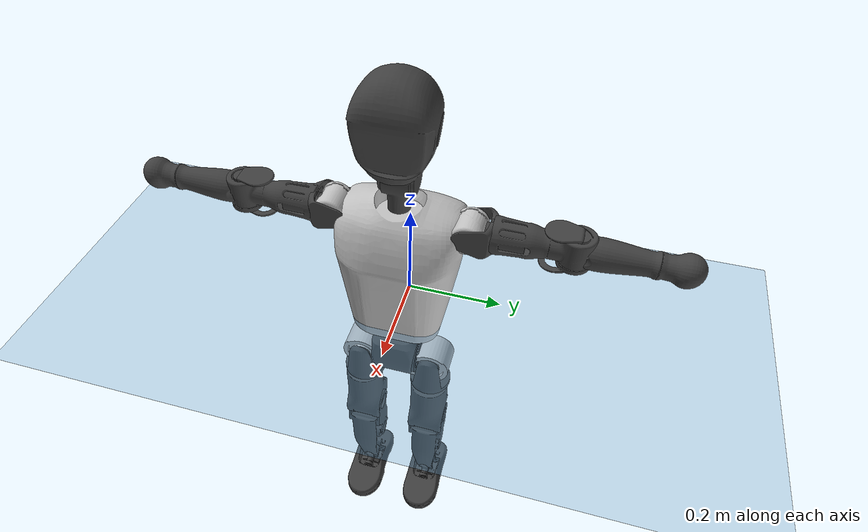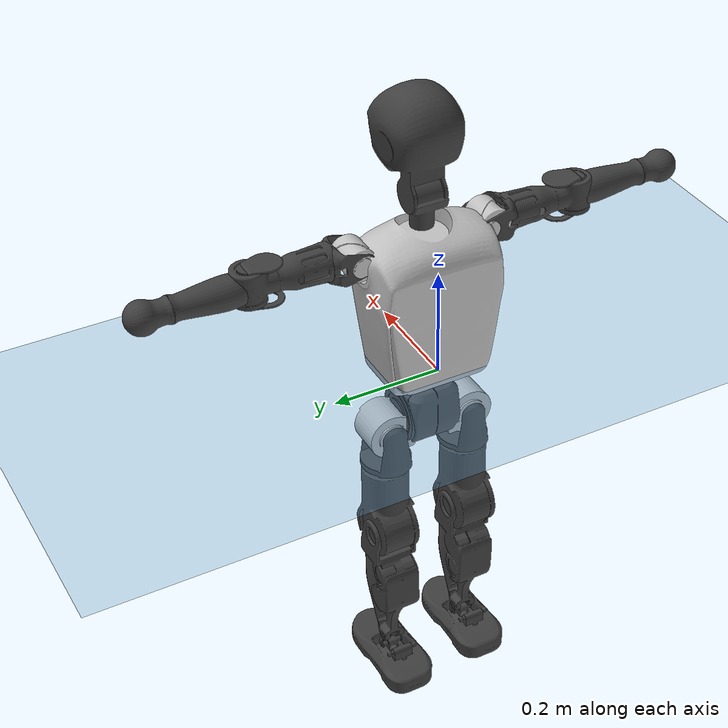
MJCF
<mujoco model="T1">
  <compiler angle="radian" assetdir="assets" balanceinertia="true" inertiafromgeom="false"/>

  <option timestep="0.005" density="1.2" viscosity="2e-05"/>

  <size nkey="1"/>

  <visual>
    <quality shadowsize="8192"/>
    <map shadowclip="0.5"/>
  </visual>

  <default>
    <default class="/">
      <joint armature="0.01" damping="0.01" frictionloss="0.1"/>
      <geom contype="0" conaffinity="0" group="1" solref="-1000 -80"/>
      <site size="0.01 0.005 0.005" group="5"/>
      <general forcelimited="true" biastype="affine" gainprm="25" biasprm="0 -25 -0.6"/>
      <default class="t1">
        <geom rgba="0.25 0.25 0.25 1"/>
        <default class="visual">
          <geom type="mesh" group="2"/>
        </default>
        <default class="collision">
          <geom group="3"/>
        </default>
        <default class="foot">
          <geom size="0.1115 0.05 0.015" type="box" condim="6" group="4" priority="1" solimp="0.015 1 0.015"/>
        </default>
        <default class="reward_collision_sphere">
          <geom group="5" rgba="1 0 0 1"/>
        </default>
      </default>
    </default>
  </default>

  <asset>
    <texture type="skybox" colorspace="auto" name="//unnamed_texture_0" builtin="gradient" rgb1="0.95 0.95 0.95" rgb2="0.95 0.95 0.95" width="100" height="600"/>
    <texture type="2d" colorspace="auto" name="texplane" builtin="checker" rgb1="0.345 0.575 0.748" rgb2="0.345 0.575 0.748" markrgb="1 1 1" width="512" height="512"/>
    <material name="MatPlane" class="/" texture="texplane" texuniform="true" texrepeat="2 2" specular="0.9"/>
    <mesh name="Trunk" class="/" file="Trunk.stl"/>
    <mesh name="H1" class="/" file="H1.stl"/>
    <mesh name="H2" class="/" file="H2.stl"/>
    <mesh name="AL1" class="/" file="AL1.stl"/>
    <mesh name="AL2" class="/" file="AL2.stl"/>
    <mesh name="AL3" class="/" file="AL3.stl"/>
    <mesh name="left_hand_link" class="/" file="left_hand_link.stl"/>
    <mesh name="AR1" class="/" file="AR1.stl"/>
    <mesh name="AR2" class="/" file="AR2.stl"/>
    <mesh name="AR3" class="/" file="AR3.stl"/>
    <mesh name="right_hand_link" class="/" file="right_hand_link.stl"/>
    <mesh name="Waist" class="/" file="Waist.stl"/>
    <mesh name="Hip_Pitch_Left" class="/" file="Hip_Pitch_Left.stl"/>
    <mesh name="Hip_Roll_Left" class="/" file="Hip_Roll_Left.stl"/>
    <mesh name="Hip_Yaw_Left" class="/" file="Hip_Yaw_Left.stl"/>
    <mesh name="Shank_Left" class="/" file="Shank_Left.stl"/>
    <mesh name="Ankle_Cross_Left" class="/" file="Ankle_Cross_Left.stl"/>
    <mesh name="left_foot_link" class="/" file="left_foot_link.stl"/>
    <mesh name="Hip_Pitch_Right" class="/" file="Hip_Pitch_Right.stl"/>
    <mesh name="Hip_Roll_Right" class="/" file="Hip_Roll_Right.stl"/>
    <mesh name="Hip_Yaw_Right" class="/" file="Hip_Yaw_Right.stl"/>
    <mesh name="Shank_Right" class="/" file="Shank_Right.stl"/>
    <mesh name="Ankle_Cross_Right" class="/" file="Ankle_Cross_Right.stl"/>
    <mesh name="right_foot_link" class="/" file="right_foot_link.stl"/>
  </asset>

  <worldbody>
    <geom name="floor" class="/" size="100 100 0.125" type="plane" group="0" material="MatPlane"/>
    <light name="toplight_shadow" class="/" pos="0 0 5" dir="0.0990148 0.0990148 -0.990148" type="directional" ambient="0.04 0.04 0.04" diffuse="0.55 0.55 0.55" specular="0.12 0.12 0.12"/>
    <light name="toplight_fill" class="/" pos="0 0 5" dir="0.0990148 0.0990148 -0.990148" type="directional" castshadow="false" ambient="0.04 0.04 0.04" diffuse="0.3 0.3 0.3" specular="0.08 0.08 0.08"/>
    <body name="trunk" childclass="t1" pos="-0.000259488 -0.00277064 -0.00066894" quat="1 -0.000431263 0.000189892 0.000835197">
      <inertial pos="0.0577441 -0.00298332 0.114565" quat="0.999884 0.00901067 -0.012274 0.000559136" mass="10.7943" diaginertia="0.126976 0.020783 0.0837436"/>
      <joint name="//unnamed_joint_0" type="free" armature="0" damping="0" frictionloss="0"/>
      <geom name="//unnamed_geom_1" class="visual" rgba="0.76 0.76 0.76 1" mesh="Trunk"/>
      <geom name="//unnamed_geom_2" class="collision" size="0.0731614 0.0975485 0.146323" pos="0.0641659 0 0.130195" type="box"/>
      <geom name="//unnamed_geom_3" class="reward_collision_sphere" size="0.112181" pos="0.0641659 0 0.108496"/>
      <geom name="//unnamed_geom_4" class="reward_collision_sphere" size="0.0146323" pos="0.0641659 0.0656253 0"/>
      <geom name="//unnamed_geom_5" class="reward_collision_sphere" size="0.0146323" pos="0.0641659 -0.0656253 0"/>
      <geom name="//unnamed_geom_6" class="reward_collision_sphere" size="0.0146323" pos="0.0641659 0.0826106 0.195293"/>
      <geom name="//unnamed_geom_7" class="reward_collision_sphere" size="0.0146323" pos="0.0641659 -0.0826106 0.195293"/>
      <site name="imu" pos="0.0104055 0.00042398 -0.0107447" size="0.00975485"/>
      <camera name="track" pos="0 -1.54412 0" quat="0.707107 0.707107 0 0" mode="trackcom"/>
      <camera name="ego_camera" pos="0.130471 0 0.455684" quat="-0.5 -0.5 0.5 0.5"/>
      <body name="H1" pos="0.0648081 -0.000684777 0.263617" quat="1 2.44271e-05 6.39258e-05 4.8478e-06">
        <inertial pos="-0.000394938 -0.00115335 0.0622834" quat="0.765329 -0.0103554 0.00115629 0.643554" mass="0.41714" diaginertia="0.000330967 6.38074e-05 0.000225986"/>
        <joint name="AAHead_yaw" pos="0 0 0" axis="-0.0032956 0.00458693 0.999984" stiffness="0.00630118" range="-1.52662 1.55382" armature="0.00984001" damping="0.00654348" frictionloss="0.100209"/>
        <geom name="//unnamed_geom_8" class="visual" mesh="H1"/>
        <body name="H2" pos="-0.00387801 0.00129175 0.0650169" quat="0.999999 -0.00140078 6.63163e-05 -0.000337855">
          <inertial pos="0.00925137 -0.000554507 0.107663" quat="0.988884 0.09945 -0.0760072 -0.0802621" mass="0.600465" diaginertia="0.00282231 0.000527832 0.00256445"/>
          <joint name="Head_pitch" pos="0 0 0" axis="0.00871263 -0.999932 0.00768691" range="-1.22352 0.316895" armature="0.0110974" damping="0.00343654" frictionloss="0.09912"/>
          <geom name="//unnamed_geom_9" class="visual" mesh="H2"/>
          <geom name="//unnamed_geom_10" class="collision" size="0.0780388" pos="0.0106943 0 0.119346"/>
          <geom name="//unnamed_geom_11" class="reward_collision_sphere" size="0.0877937" pos="0.0213886 0 0.108496"/>
        </body>
      </body>
      <body name="AL1" pos="0.0643001 0.0825639 0.237473" quat="1 -3.05077e-05 0.0004429 8.12762e-05">
        <inertial pos="-0.00351397 0.0340099 0.000455456" quat="0.504074 0.49572 -0.504227 0.495909" mass="0.475231" diaginertia="0.00185372 0.000343871 0.000419099"/>
        <joint name="Left_Shoulder_Pitch" pos="0 0 0" axis="0.0113479 0.999929 0.00361699" range="-3.35855 1.21669" armature="0.00985563" damping="0.00715029" frictionloss="0.110872"/>
        <geom name="//unnamed_geom_12" class="visual" rgba="0.76 0.76 0.76 1" mesh="AL1"/>
        <body name="AL2" pos="0.000244888 0.0404334 0.00220403" quat="1 3.21877e-05 0.000361518 -0.00019131">
          <inertial pos="0.00157533 0.0296528 -0.00290955" quat="0.490165 0.50921 -0.489298 0.510911" mass="0.153841" diaginertia="0.000571608 9.95283e-05 0.000264707"/>
          <joint name="Left_Shoulder_Roll" pos="0 0 0" axis="-0.999993 -0.0037953 -0.000113937" stiffness="0.00356598" range="-1.51849 1.72835" armature="0.00969416" damping="0" frictionloss="0.098517"/>
          <geom name="//unnamed_geom_13" class="visual" mesh="AL2"/>
          <body name="AL3" pos="0.00333663 0.0477143 0.00335706" quat="1 9.93125e-05 0.000754681 -0.000194127">
            <inertial pos="0.000589268 0.065777 0.00213105" quat="0.711269 0.702826 -0.011263 -0.00215448" mass="0.922972" diaginertia="0.0178905 0.00338836 0.000892666"/>
            <joint name="Left_Elbow_Pitch" pos="0 0 0" axis="0.00512612 -0.999884 0.0143342" range="-2.26472 2.21324" armature="0.00898849" damping="0.00455414" frictionloss="0.10246"/>
            <geom name="//unnamed_geom_14" class="visual" mesh="AL3"/>
            <geom name="//unnamed_geom_15" class="collision" size="0.0292646 0.0731614" pos="0 0.0386031 0" quat="0.707105 0.707108 0 0" type="cylinder"/>
            <geom name="//unnamed_geom_16" class="reward_collision_sphere" size="0.0351175"/>
            <body name="left_hand_link" pos="-0.00132673 0.115268 -0.00158174" quat="1 -1.83567e-05 7.17427e-05 -7.25645e-05">
              <inertial pos="0.000281488 0.0875755 -0.000218253" quat="0.713673 0.700468 -0.00392992 0.000500439" mass="0.304428" diaginertia="0.0112489 0.00229618 0.000324323"/>
              <joint name="Left_Elbow_Yaw" pos="0 0 0" axis="-2.13583e-05 0.000109568 1" range="-2.43197 0.0147169" armature="0.00951257" damping="0.0257561" frictionloss="0.0933054"/>
              <geom name="//unnamed_geom_17" class="visual" mesh="left_hand_link"/>
              <geom name="//unnamed_geom_18" class="collision" size="0.0292646 0.0853549" pos="0 0.100368 0" quat="0.707105 0.707108 0 0" type="cylinder"/>
              <geom name="//unnamed_geom_19" class="reward_collision_sphere" size="0.0487743"/>
              <geom name="//unnamed_geom_20" class="reward_collision_sphere" size="0.034142" pos="0 0.0849268 0"/>
              <geom name="//unnamed_geom_21" class="reward_collision_sphere" size="0.034142" pos="0 0.165993 0"/>
            </body>
          </body>
        </body>
      </body>
      <body name="AR1" pos="0.0636091 -0.081554 0.238831" quat="0.999999 -0.00139131 0.00061182 0.000356971">
        <inertial pos="-0.00312882 -0.0335475 -0.00163622" quat="0.498877 0.49312 -0.515059 0.492614" mass="0.499321" diaginertia="0.00181907 0.000353308 0.00044858"/>
        <joint name="Right_Shoulder_Pitch" pos="0 0 0" axis="0.00322224 -0.999976 0.00614139" stiffness="0.00438766" range="-1.23636 3.25419" armature="0.0102637" damping="0" frictionloss="0.0838855"/>
        <geom name="//unnamed_geom_22" class="visual" rgba="0.76 0.76 0.76 1" mesh="AR1"/>
        <body name="AR2" pos="-0.000779856 -0.0327677 -0.0024946" quat="1 0.000240743 -9.48569e-05 -0.000191138">
          <inertial pos="0.00177846 -0.0303041 -0.00165206" quat="0.507144 0.499457 -0.511353 0.481524" mass="0.147572" diaginertia="0.000560248 9.52456e-05 0.000259818"/>
          <joint name="Right_Shoulder_Roll" pos="0 0 0" axis="-0.999953 -0.00824475 0.00510591" range="-1.68396 1.62478" armature="0.00945033" damping="0.0188495" frictionloss="0.0914753"/>
          <geom name="//unnamed_geom_23" class="visual" mesh="AR2"/>
          <body name="AR3" pos="0.00231591 -0.0442735 0.00123844" quat="1 7.08404e-05 5.19653e-05 -3.54254e-05">
            <inertial pos="-0.00122486 -0.0663933 -0.00245787" quat="0.705241 0.70896 -0.00113799 0.00289555" mass="0.946993" diaginertia="0.0180659 0.00343368 0.000944503"/>
            <joint name="Right_Elbow_Pitch" pos="0 0 0" axis="-0.00230392 0.999993 -0.00309103" stiffness="0.00862711" range="-2.28563 2.21706" armature="0.00949974" damping="0.0100374" frictionloss="0.109192"/>
            <geom name="//unnamed_geom_24" class="visual" mesh="AR3"/>
            <geom name="//unnamed_geom_25" class="collision" size="0.0292646 0.0731614" pos="0 -0.0386031 0" quat="0.707105 0.707108 0 0" type="cylinder"/>
            <geom name="//unnamed_geom_26" class="reward_collision_sphere" size="0.0351175"/>
            <body name="right_hand_link" pos="-0.000299104 -0.113261 0.000974248" quat="1 -3.46724e-05 0.000638065 0.000370493">
              <inertial pos="-0.000997989 -0.0875333 0.00108164" quat="0.706244 0.707968 0.000882987 0.00033839" mass="0.289981" diaginertia="0.0110481 0.00213589 0.000313079"/>
              <joint name="Right_Elbow_Yaw" pos="0 0 0" axis="-0.00870275 0.00011114 0.999962" range="0.0160148 2.48913" armature="0.0102067" damping="0.0102215" frictionloss="0.107185"/>
              <geom name="//unnamed_geom_27" class="visual" mesh="right_hand_link"/>
              <geom name="//unnamed_geom_28" class="collision" size="0.0292646 0.0853549" pos="0 -0.100368 0" quat="0.707105 0.707108 0 0" type="cylinder"/>
              <geom name="//unnamed_geom_29" class="reward_collision_sphere" size="0.0487743"/>
              <geom name="//unnamed_geom_30" class="reward_collision_sphere" size="0.034142" pos="0 -0.0849268 0"/>
              <geom name="//unnamed_geom_31" class="reward_collision_sphere" size="0.034142" pos="0 -0.165993 0"/>
            </body>
          </body>
        </body>
      </body>
      <body name="Waist" pos="0.0666585 -0.00276364 -0.125702" quat="1 -0.000387082 -0.00049765 -0.000727235">
        <inertial pos="0.00204085 -0.00231264 0.00898401" quat="0.983925 -0.00198 -0.178483 0.00566293" mass="2.42433" diaginertia="0.0076604 0.00148361 0.00722733"/>
        <joint name="Waist" pos="0 0 0" axis="0.00250223 -0.00135851 0.999996" range="-1.54974 1.55671" armature="0.00913148" damping="0.0214963" frictionloss="0.102267"/>
        <geom name="//unnamed_geom_32" class="visual" mesh="Waist"/>
        <body name="Hip_Pitch_Left" pos="0.000680939 0.0789706 -0.00138644" quat="0.999999 -0.000328824 -0.000420788 0.00106288">
          <inertial pos="0.00113214 -0.00875479 -0.0189467" quat="0.976129 0.216282 0.0197671 -0.00205999" mass="0.973264" diaginertia="0.00253438 0.000398537 0.00193471"/>
          <joint name="Left_Hip_Pitch" pos="0 0 0" axis="-0.00329574 0.999985 0.00443006" range="-1.79191 1.56472" armature="0.0109739" damping="0.00543997" frictionloss="0.102384"/>
          <geom name="//unnamed_geom_33" class="visual" rgba="0.76 0.76 0.76 1" mesh="Hip_Pitch_Left"/>
          <body name="Hip_Roll_Left" pos="-0.00148774 -0.00192617 -0.0210748" quat="1 0.000177254 0.000381331 0.000115856">
            <inertial pos="-0.000322728 -0.000675359 -0.0572678" quat="0.699778 -0.00443935 8.49116e-05 0.714347" mass="0.353792" diaginertia="0.0024733 0.00041484 0.000781764"/>
            <joint name="Left_Hip_Roll" pos="0 0 0" axis="-0.999996 -0.000573868 -0.00274399" range="-1.51321 0.219621" armature="0.00844688" damping="0.0101943" frictionloss="0.0915506"/>
            <geom name="//unnamed_geom_34" class="visual" mesh="Hip_Roll_Left"/>
            <geom name="//unnamed_geom_35" class="reward_collision_sphere" size="0.0536517"/>
            <body name="Hip_Yaw_Left" pos="0.00391028 -0.000123002 -0.0927224" quat="1 -0.000186921 6.33787e-05 3.05936e-05">
              <inertial pos="-0.00841926 0.00160409 -0.0971751" quat="0.696479 -0.0335259 -0.0317479 0.71609" mass="1.93063" diaginertia="0.0364604 0.00684674 0.00387443"/>
              <joint name="Left_Hip_Yaw" pos="0 0 0" axis="0.00193295 -0.00224188 -0.999996" stiffness="0.00177825" range="-1.0488 1.00415" armature="0.00967195" damping="0.0227587" frictionloss="0.09573"/>
              <geom name="//unnamed_geom_36" class="visual" mesh="Hip_Yaw_Left"/>
              <geom name="//unnamed_geom_37" class="collision" size="0.0487743 0.0780388" type="cylinder"/>
              <body name="Shank_Left" pos="-0.0163146 -0.00097247 -0.147584" quat="1 0.000563193 -0.000612449 0.000106356">
                <inertial pos="-0.00872442 -0.00116077 -0.134475" quat="0.997715 -0.00159488 -0.0179904 0.06511" mass="1.71273" diaginertia="0.0499152 0.00989198 0.00287213"/>
                <joint name="Left_Knee_Pitch" pos="0 0 0" axis="-0.00440064 0.999989 0.00171909" stiffness="0.00751179" range="0.0485589 2.28351" armature="0.0100353" damping="0" frictionloss="0.0887604"/>
                <geom name="//unnamed_geom_38" class="visual" mesh="Shank_Left"/>
                <geom name="//unnamed_geom_39" class="collision" size="0.0487743 0.0731614" pos="0 0 -0.130195" type="cylinder"/>
                <geom name="//unnamed_geom_40" class="reward_collision_sphere" size="0.0634065"/>
                <body name="Ankle_Cross_Left" pos="-0.000683587 0.00149403 -0.30569" quat="1 -5.86652e-05 -6.44023e-05 0.000267691">
                  <inertial pos="-0.00669011 0.000956299 -0.00889912" quat="0.448966 0.54878 0.553541 0.436878" mass="0.0687176" diaginertia="4.14586e-05 7.21859e-06 1.77236e-05"/>
                  <joint name="Left_Ankle_Pitch" pos="0 0 0" axis="-0.00981098 0.999951 -0.00128204" range="-0.855098 0.395624" armature="0.00842312" damping="0.0131307" frictionloss="0.0955622"/>
                  <geom name="//unnamed_geom_41" class="visual" mesh="Ankle_Cross_Left"/>
                  <body name="left_foot_link" pos="-0.00161283 2.92225e-05 -0.0153933" quat="1 -3.38173e-05 0.000402361 -0.00013709">
                    <inertial pos="0.000407131 0.000997587 -0.0108844" quat="0.00922297 0.620252 0.00110309 0.784348" mass="0.618619" diaginertia="0.0036216 0.000647339 0.00310734"/>
                    <joint name="Left_Ankle_Roll" pos="0 0 0" axis="-0.999997 0.00166438 -0.00166514" range="-0.42506 0.431489" armature="0.00937821" damping="0" frictionloss="0.101154"/>
                    <geom name="//unnamed_geom_42" class="visual" mesh="left_foot_link"/>
                    <geom name="left_foot" class="foot" size="0.0716031 0.0457478 0.0164369" pos="0.0106943 0 -0.0162744"/>
                    <geom name="//unnamed_geom_44" class="reward_collision_sphere" size="0.0507252" pos="0.0106943 0 -0.0162744"/>
                    <geom name="//unnamed_geom_45" class="reward_collision_sphere" size="0.0292646" pos="0.101596 -0.0177574 -0.0162744"/>
                    <geom name="//unnamed_geom_46" class="reward_collision_sphere" size="0.0292646" pos="-0.0748602 -0.0177574 -0.0162744"/>
                    <site name="left_foot" class="foot" pos="0.0106943 0 -0.0162744" size="0.00975485"/>
                  </body>
                </body>
              </body>
            </body>
          </body>
        </body>
        <body name="Hip_Pitch_Right" pos="-0.00174552 -0.0813728 -0.00185516" quat="1 -0.00030035 -0.000292878 0.000100803">
          <inertial pos="-0.000497189 0.00744792 -0.0191463" quat="0.975184 -0.219983 0.0239864 -0.00691711" mass="0.976041" diaginertia="0.00252511 0.000396613 0.00181729"/>
          <joint name="Right_Hip_Pitch" pos="0 0 0" axis="5.83191e-05 -1 -2.71088e-05" range="-1.61264 1.81207" armature="0.00840382" damping="0.000633037" frictionloss="0.0956671"/>
          <geom name="//unnamed_geom_47" class="visual" rgba="0.76 0.76 0.76 1" mesh="Hip_Pitch_Right"/>
          <body name="Hip_Roll_Right" pos="0.0012734 -0.00386664 -0.0244278" quat="1 0.000486353 -0.000270642 -0.000181146">
            <inertial pos="0.00088054 -0.000866175 -0.057802" quat="0.712388 -0.0157004 -0.0123961 0.701501" mass="0.367251" diaginertia="0.00250064 0.000423877 0.000786399"/>
            <joint name="Right_Hip_Roll" pos="0 0 0" axis="-1 -0.000245525 0.000192964" range="-0.195253 1.56378" armature="0.0111359" damping="0.00709796" frictionloss="0.0983594"/>
            <geom name="//unnamed_geom_48" class="visual" mesh="Hip_Roll_Right"/>
            <geom name="//unnamed_geom_49" class="reward_collision_sphere" size="0.0536517"/>
            <body name="Hip_Yaw_Right" pos="0.00182059 -0.0032656 -0.0912932" quat="1 -0.000194694 -0.000570637 0.000372394">
              <inertial pos="-0.00510947 -0.00227074 -0.0950105" quat="0.715018 -0.0312471 -0.0327795 0.697637" mass="2.07496" diaginertia="0.036629 0.00702442 0.00386049"/>
              <joint name="Right_Hip_Yaw" pos="0 0 0" axis="-0.000565299 -0.000678932 -1" range="-1.04157 0.975898" armature="0.0103414" damping="0.0169825" frictionloss="0.0981137"/>
              <geom name="//unnamed_geom_50" class="visual" mesh="Hip_Yaw_Right"/>
              <geom name="//unnamed_geom_51" class="collision" size="0.0487743 0.0780388" type="cylinder"/>
              <body name="Shank_Right" pos="-0.0104363 -0.000773361 -0.144604" quat="1 5.42669e-05 -0.000271293 2.56934e-05">
                <inertial pos="-0.0071152 0.00192534 -0.133521" quat="0.999435 0.000644993 -0.013434 -0.0308041" mass="1.63018" diaginertia="0.0476492 0.0096696 0.00290832"/>
                <joint name="Right_Knee_Pitch" pos="0 0 0" axis="0.00498159 -0.999987 0.000655882" range="-2.31497 -0.032053" armature="0.00940225" damping="0.0177789" frictionloss="0.0845602"/>
                <geom name="//unnamed_geom_52" class="visual" mesh="Shank_Right"/>
                <geom name="//unnamed_geom_53" class="collision" size="0.0487743 0.0731614" pos="0 0 -0.130195" type="cylinder"/>
                <geom name="//unnamed_geom_54" class="reward_collision_sphere" size="0.0634065"/>
                <body name="Ankle_Cross_Right" pos="0.0033795 -0.00160625 -0.301176" quat="1 -0.00070771 0.000148461 -1.7469e-05">
                  <inertial pos="-0.00663712 -0.00196474 -0.00702692" quat="0.439608 0.547107 0.54786 0.455268" mass="0.0670089" diaginertia="4.15916e-05 7.01646e-06 1.67884e-05"/>
                  <joint name="Right_Ankle_Pitch" pos="0 0 0" axis="0.0077856 -0.999896 0.0121513" range="-0.373482 0.858258" armature="0.00945926" damping="0.00880171" frictionloss="0.09518"/>
                  <geom name="//unnamed_geom_55" class="visual" mesh="Ankle_Cross_Right"/>
                  <body name="right_foot_link" pos="-0.000698632 -0.00110307 -0.0154465" quat="1 0.000328333 0.000533318 0.00019357">
                    <inertial pos="0.000550019 0.00261127 -0.0111933" quat="-0.00240016 0.627469 0.00251799 0.778634" mass="0.613919" diaginertia="0.00373946 0.000648015 0.00318557"/>
                    <joint name="Right_Ankle_Roll" pos="0 0 0" axis="-0.999965 -0.0069513 -0.00472717" range="-0.469121 0.451756" armature="0.0103459" damping="0.00938214" frictionloss="0.0872633"/>
                    <geom name="//unnamed_geom_56" class="visual" mesh="right_foot_link"/>
                    <geom name="right_foot" class="foot" size="0.0660473 0.0438186 0.0156022" pos="0.0106943 0 -0.0162744"/>
                    <geom name="//unnamed_geom_58" class="reward_collision_sphere" size="0.0390194"/>
                    <geom name="//unnamed_geom_59" class="reward_collision_sphere" size="0.0292646" pos="0.0106943 0 -0.0162744"/>
                    <geom name="//unnamed_geom_60" class="reward_collision_sphere" size="0.0292646" pos="0.101596 0.0177574 -0.0162744"/>
                    <geom name="//unnamed_geom_61" class="reward_collision_sphere" size="0.0292646" pos="-0.0748602 0.0177574 -0.0162744"/>
                    <site name="right_foot" class="foot" pos="0.0106943 0 -0.0162744" size="0.00975485"/>
                  </body>
                </body>
              </body>
            </body>
          </body>
        </body>
      </body>
    </body>
  </worldbody>

  <contact>
    <pair class="/" geom1="floor" geom2="left_foot" name="//unnamed_contact_0"/>
    <pair class="/" geom1="floor" geom2="right_foot" name="//unnamed_contact_1"/>
  </contact>

  <actuator>
    <general name="AAHead_yaw" class="/" joint="AAHead_yaw" forcerange="-6.17993 6.17993" gainprm="22.642" biasprm="0 -22.642 -0.519962"/>
    <general name="Head_pitch" class="/" joint="Head_pitch" forcerange="-7.39397 7.39397" gainprm="22.642" biasprm="0 -22.642 -0.519962"/>
    <general name="Left_Shoulder_Pitch" class="/" joint="Left_Shoulder_Pitch" forcerange="-16.7243 16.7243" gainprm="22.642" biasprm="0 -22.642 -0.519962"/>
    <general name="Left_Shoulder_Roll" class="/" joint="Left_Shoulder_Roll" forcerange="-18.1132 18.1132" gainprm="22.642" biasprm="0 -22.642 -0.519962"/>
    <general name="Left_Elbow_Pitch" class="/" joint="Left_Elbow_Pitch" forcerange="-17.8638 17.8638" gainprm="22.642" biasprm="0 -22.642 -0.519962"/>
    <general name="Left_Elbow_Yaw" class="/" joint="Left_Elbow_Yaw" forcerange="-16.7465 16.7465" gainprm="22.642" biasprm="0 -22.642 -0.519962"/>
    <general name="Right_Shoulder_Pitch" class="/" joint="Right_Shoulder_Pitch" forcerange="-17.8415 17.8415" gainprm="22.642" biasprm="0 -22.642 -0.519962"/>
    <general name="Right_Shoulder_Roll" class="/" joint="Right_Shoulder_Roll" forcerange="-15.8687 15.8687" gainprm="22.642" biasprm="0 -22.642 -0.519962"/>
    <general name="Right_Elbow_Pitch" class="/" joint="Right_Elbow_Pitch" forcerange="-18.8616 18.8616" gainprm="22.642" biasprm="0 -22.642 -0.519962"/>
    <general name="Right_Elbow_Yaw" class="/" joint="Right_Elbow_Yaw" forcerange="-16.2866 16.2866" gainprm="22.642" biasprm="0 -22.642 -0.519962"/>
    <general name="Waist" class="/" joint="Waist" forcerange="-28.5008 28.5008" gainprm="22.642" biasprm="0 -22.642 -0.519962"/>
    <general name="Left_Hip_Pitch" class="/" joint="Left_Hip_Pitch" forcerange="-39.9422 39.9422" gainprm="22.642" biasprm="0 -22.642 -0.519962"/>
    <general name="Left_Hip_Roll" class="/" joint="Left_Hip_Roll" forcerange="-30.337 30.337" gainprm="22.642" biasprm="0 -22.642 -0.519962"/>
    <general name="Left_Hip_Yaw" class="/" joint="Left_Hip_Yaw" forcerange="-27.8291 27.8291" gainprm="22.642" biasprm="0 -22.642 -0.519962"/>
    <general name="Left_Knee_Pitch" class="/" joint="Left_Knee_Pitch" forcerange="-55.4098 55.4098" gainprm="22.642" biasprm="0 -22.642 -0.519962"/>
    <general name="Left_Ankle_Pitch" class="/" joint="Left_Ankle_Pitch" forcerange="-18.9325 18.9325" gainprm="22.642" biasprm="0 -22.642 -0.519962"/>
    <general name="Left_Ankle_Roll" class="/" joint="Left_Ankle_Roll" forcerange="-15.425 15.425" gainprm="22.642" biasprm="0 -22.642 -0.519962"/>
    <general name="Right_Hip_Pitch" class="/" joint="Right_Hip_Pitch" forcerange="-44.9185 44.9185" gainprm="22.642" biasprm="0 -22.642 -0.519962"/>
    <general name="Right_Hip_Roll" class="/" joint="Right_Hip_Roll" forcerange="-27.7566 27.7566" gainprm="22.642" biasprm="0 -22.642 -0.519962"/>
    <general name="Right_Hip_Yaw" class="/" joint="Right_Hip_Yaw" forcerange="-29.4006 29.4006" gainprm="22.642" biasprm="0 -22.642 -0.519962"/>
    <general name="Right_Knee_Pitch" class="/" joint="Right_Knee_Pitch" forcerange="-62.6028 62.6028" gainprm="22.642" biasprm="0 -22.642 -0.519962"/>
    <general name="Right_Ankle_Pitch" class="/" joint="Right_Ankle_Pitch" forcerange="-19.2108 19.2108" gainprm="22.642" biasprm="0 -22.642 -0.519962"/>
    <general name="Right_Ankle_Roll" class="/" joint="Right_Ankle_Roll" forcerange="-14.6663 14.6663" gainprm="22.642" biasprm="0 -22.642 -0.519962"/>
  </actuator>

  <sensor>
    <gyro site="imu" name="imu_angular_velocity"/>
    <velocimeter site="imu" name="imu_linear_velocity"/>
    <framelinvel objtype="site" objname="left_foot" name="left_foot_global_linear_velocity"/>
    <framelinvel objtype="site" objname="right_foot" name="right_foot_global_linear_velocity"/>
  </sensor>

  <keyframe>
    <key name="home" qpos="0 0 0.6385 1 0 0 0 0 0 0 1.4 0 -0.4 0 -1.4 0 0.4 0 -0.4 0 0 0.8 -0.4 0 0.4 0 0 -0.8 0.4 0"/>
  </keyframe>
</mujoco>
